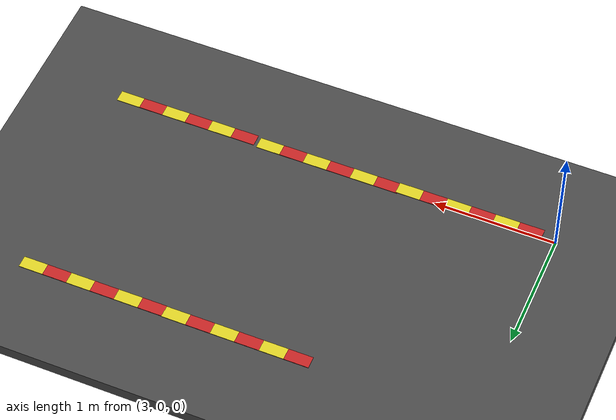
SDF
<sdf version="1.6">
 <world name="default">
  <model name="ground_plane">
   <static>1</static>
   <link name="link">
    <collision name="collision">
     <geometry><plane><normal>0 0 1</normal><size>40 40</size></plane></geometry>
     <surface><friction><ode><mu>100</mu><mu2>50</mu2></ode></friction></surface>
    </collision>
    <visual name="visual">
     <cast_shadows>0</cast_shadows>
     <geometry><plane><normal>0 0 1</normal><size>40 40</size></plane></geometry>
     <material>
      <script><uri>file://media/materials/scripts/gazebo.material</uri><name>Gazebo/Grey</name></script>
     </material>
    </visual>
    <velocity_decay><linear>0</linear><angular>0</angular></velocity_decay>
   </link>
  </model>
  <model name="asphalt_plane">
   <static>1</static>
   <link name="link">
    <collision name="collision"><geometry><box><size>40 40 0.1</size></box></geometry></collision>
    <visual name="visual">
     <cast_shadows>0</cast_shadows>
     <geometry><box><size>40 40 0.1</size></box></geometry>
     <material>
      <script>
       <uri>model://asphalt_plane/materials/scripts</uri>
       <uri>model://asphalt_plane/materials/textures</uri>
       <name>vrc/asphalt</name>
      </script>
     </material>
    </visual>
    <velocity_decay><linear>0</linear><angular>0</angular></velocity_decay>
   </link>
   <pose>0.433796 -0.497378 0 0 -0 0</pose>
  </model>
  <model name="DashLine_clone_clone_clone">
   <link name="link">
    <inertial>
     <mass>1</mass>
     <inertia>
      <ixx>0.166667</ixx>
      <ixy>0</ixy>
      <ixz>0</ixz>
      <iyy>0.166667</iyy>
      <iyz>0</iyz>
      <izz>0.166667</izz>
     </inertia>
    </inertial>
    <gravity>0</gravity>
    <visual name="ModelPreview_3::link::visual_3">
     <geometry><box><size>0.2 0.1 0.01</size></box></geometry>
     <material>
      <script><name>Gazebo/Yellow</name><uri>file://media/materials/scripts/gazebo.material</uri></script>
      <shader type="vertex"><normal_map>__default__</normal_map></shader>
      <ambient>0.988 0.914 0.31 1</ambient>
      <diffuse>0.7 0.7 0.7 1</diffuse>
      <specular>0.01 0.01 0.01 1</specular>
      <emissive>0 0 0 1</emissive>
     </material>
     <pose>0.2 0 0 0 -0 0</pose>
    </visual>
    <visual name="ModelPreview_6::link::visual_5">
     <geometry><box><size>0.2 0.1 0.01</size></box></geometry>
     <material>
      <script><name>Gazebo/Yellow</name><uri>file://media/materials/scripts/gazebo.material</uri></script>
      <shader type="vertex"><normal_map>__default__</normal_map></shader>
      <ambient>0.988 0.914 0.31 1</ambient>
      <diffuse>0.7 0.7 0.7 1</diffuse>
      <specular>0.01 0.01 0.01 1</specular>
      <emissive>0 0 0 1</emissive>
     </material>
     <pose>0.6 0 0 0 -0 0</pose>
    </visual>
    <visual name="ModelPreview_3::link::visual_4">
     <geometry><box><size>0.2 0.1 0.01</size></box></geometry>
     <material>
      <script><name>Gazebo/Red</name><uri>file://media/materials/scripts/gazebo.material</uri></script>
      <shader type="vertex"><normal_map>__default__</normal_map></shader>
      <ambient>0.937 0.161 0.161 1</ambient>
      <diffuse>0.7 0.7 0.7 1</diffuse>
      <specular>0.01 0.01 0.01 1</specular>
      <emissive>0 0 0 1</emissive>
     </material>
     <pose>0.4 0 0 0 -0 0</pose>
    </visual>
    <visual name="ModelPreview_3::link::visual_2">
     <geometry><box><size>0.2 0.1 0.01</size></box></geometry>
     <material>
      <script><name>Gazebo/Red</name><uri>file://media/materials/scripts/gazebo.material</uri></script>
      <shader type="vertex"><normal_map>__default__</normal_map></shader>
      <ambient>0.937 0.161 0.161 1</ambient>
      <diffuse>0.7 0.7 0.7 1</diffuse>
      <specular>0.01 0.01 0.01 1</specular>
      <emissive>0 0 0 1</emissive>
     </material>
    </visual>
    <visual name="visual">
     <geometry><box><size>0.2 0.1 0.01</size></box></geometry>
     <material>
      <script><name>Gazebo/Red</name><uri>file://media/materials/scripts/gazebo.material</uri></script>
      <shader type="vertex"><normal_map>__default__</normal_map></shader>
      <ambient>0.8 0 0 1</ambient>
      <diffuse>0.7 0.7 0.7 1</diffuse>
      <specular>0.01 0.01 0.01 1</specular>
      <emissive>0 0 0 1</emissive>
     </material>
     <pose>-0.4 0 0 0 -0 0</pose>
    </visual>
    <visual name="ModelPreview_3::link::visual_1">
     <geometry><box><size>0.2 0.1 0.01</size></box></geometry>
     <material>
      <script><name>Gazebo/Yellow</name><uri>file://media/materials/scripts/gazebo.material</uri></script>
      <shader type="vertex"><normal_map>__default__</normal_map></shader>
      <ambient>0.988 0.914 0.31 1</ambient>
      <diffuse>0.7 0.7 0.7 1</diffuse>
      <specular>0.01 0.01 0.01 1</specular>
      <emissive>0 0 0 1</emissive>
     </material>
     <pose>-0.2 0 0 0 -0 0</pose>
    </visual>
   </link>
   <static>0</static>
   <pose>3.60612 0.00353 0.05 0 -0 0</pose>
  </model>
  <model name="DashLine_clone_clone_clone_0">
   <link name="link">
    <inertial>
     <mass>1</mass>
     <inertia>
      <ixx>0.166667</ixx>
      <ixy>0</ixy>
      <ixz>0</ixz>
      <iyy>0.166667</iyy>
      <iyz>0</iyz>
      <izz>0.166667</izz>
     </inertia>
    </inertial>
    <gravity>0</gravity>
    <visual name="ModelPreview_3::link::visual_3">
     <geometry><box><size>0.2 0.1 0.01</size></box></geometry>
     <material>
      <script><name>Gazebo/Yellow</name><uri>file://media/materials/scripts/gazebo.material</uri></script>
      <shader type="vertex"><normal_map>__default__</normal_map></shader>
      <ambient>0.988 0.914 0.31 1</ambient>
      <diffuse>0.7 0.7 0.7 1</diffuse>
      <specular>0.01 0.01 0.01 1</specular>
      <emissive>0 0 0 1</emissive>
     </material>
     <pose>0.2 0 0 0 -0 0</pose>
    </visual>
    <visual name="ModelPreview_6::link::visual_5">
     <geometry><box><size>0.2 0.1 0.01</size></box></geometry>
     <material>
      <script><name>Gazebo/Yellow</name><uri>file://media/materials/scripts/gazebo.material</uri></script>
      <shader type="vertex"><normal_map>__default__</normal_map></shader>
      <ambient>0.988 0.914 0.31 1</ambient>
      <diffuse>0.7 0.7 0.7 1</diffuse>
      <specular>0.01 0.01 0.01 1</specular>
      <emissive>0 0 0 1</emissive>
     </material>
     <pose>0.6 0 0 0 -0 0</pose>
    </visual>
    <visual name="ModelPreview_3::link::visual_4">
     <geometry><box><size>0.2 0.1 0.01</size></box></geometry>
     <material>
      <script><name>Gazebo/Red</name><uri>file://media/materials/scripts/gazebo.material</uri></script>
      <shader type="vertex"><normal_map>__default__</normal_map></shader>
      <ambient>0.937 0.161 0.161 1</ambient>
      <diffuse>0.7 0.7 0.7 1</diffuse>
      <specular>0.01 0.01 0.01 1</specular>
      <emissive>0 0 0 1</emissive>
     </material>
     <pose>0.4 0 0 0 -0 0</pose>
    </visual>
    <visual name="ModelPreview_3::link::visual_2">
     <geometry><box><size>0.2 0.1 0.01</size></box></geometry>
     <material>
      <script><name>Gazebo/Red</name><uri>file://media/materials/scripts/gazebo.material</uri></script>
      <shader type="vertex"><normal_map>__default__</normal_map></shader>
      <ambient>0.937 0.161 0.161 1</ambient>
      <diffuse>0.7 0.7 0.7 1</diffuse>
      <specular>0.01 0.01 0.01 1</specular>
      <emissive>0 0 0 1</emissive>
     </material>
    </visual>
    <visual name="visual">
     <geometry><box><size>0.2 0.1 0.01</size></box></geometry>
     <material>
      <script><name>Gazebo/Red</name><uri>file://media/materials/scripts/gazebo.material</uri></script>
      <shader type="vertex"><normal_map>__default__</normal_map></shader>
      <ambient>0.8 0 0 1</ambient>
      <diffuse>0.7 0.7 0.7 1</diffuse>
      <specular>0.01 0.01 0.01 1</specular>
      <emissive>0 0 0 1</emissive>
     </material>
     <pose>-0.4 0 0 0 -0 0</pose>
    </visual>
    <visual name="ModelPreview_3::link::visual_1">
     <geometry><box><size>0.2 0.1 0.01</size></box></geometry>
     <material>
      <script><name>Gazebo/Yellow</name><uri>file://media/materials/scripts/gazebo.material</uri></script>
      <shader type="vertex"><normal_map>__default__</normal_map></shader>
      <ambient>0.988 0.914 0.31 1</ambient>
      <diffuse>0.7 0.7 0.7 1</diffuse>
      <specular>0.01 0.01 0.01 1</specular>
      <emissive>0 0 0 1</emissive>
     </material>
     <pose>-0.2 0 0 0 -0 0</pose>
    </visual>
   </link>
   <static>0</static>
   <pose>4.79034 0.009955 0.05 0 -0 0</pose>
  </model>
  <model name="DashLine_clone_clone_clone_1">
   <link name="link">
    <inertial>
     <mass>1</mass>
     <inertia>
      <ixx>0.166667</ixx>
      <ixy>0</ixy>
      <ixz>0</ixz>
      <iyy>0.166667</iyy>
      <iyz>0</iyz>
      <izz>0.166667</izz>
     </inertia>
    </inertial>
    <gravity>0</gravity>
    <visual name="ModelPreview_3::link::visual_3">
     <geometry><box><size>0.2 0.1 0.01</size></box></geometry>
     <material>
      <script><name>Gazebo/Yellow</name><uri>file://media/materials/scripts/gazebo.material</uri></script>
      <shader type="vertex"><normal_map>__default__</normal_map></shader>
      <ambient>0.988 0.914 0.31 1</ambient>
      <diffuse>0.7 0.7 0.7 1</diffuse>
      <specular>0.01 0.01 0.01 1</specular>
      <emissive>0 0 0 1</emissive>
     </material>
     <pose>0.2 0 0 0 -0 0</pose>
    </visual>
    <visual name="ModelPreview_6::link::visual_5">
     <geometry><box><size>0.2 0.1 0.01</size></box></geometry>
     <material>
      <script><name>Gazebo/Yellow</name><uri>file://media/materials/scripts/gazebo.material</uri></script>
      <shader type="vertex"><normal_map>__default__</normal_map></shader>
      <ambient>0.988 0.914 0.31 1</ambient>
      <diffuse>0.7 0.7 0.7 1</diffuse>
      <specular>0.01 0.01 0.01 1</specular>
      <emissive>0 0 0 1</emissive>
     </material>
     <pose>0.6 0 0 0 -0 0</pose>
    </visual>
    <visual name="ModelPreview_3::link::visual_4">
     <geometry><box><size>0.2 0.1 0.01</size></box></geometry>
     <material>
      <script><name>Gazebo/Red</name><uri>file://media/materials/scripts/gazebo.material</uri></script>
      <shader type="vertex"><normal_map>__default__</normal_map></shader>
      <ambient>0.937 0.161 0.161 1</ambient>
      <diffuse>0.7 0.7 0.7 1</diffuse>
      <specular>0.01 0.01 0.01 1</specular>
      <emissive>0 0 0 1</emissive>
     </material>
     <pose>0.4 0 0 0 -0 0</pose>
    </visual>
    <visual name="ModelPreview_3::link::visual_2">
     <geometry><box><size>0.2 0.1 0.01</size></box></geometry>
     <material>
      <script><name>Gazebo/Red</name><uri>file://media/materials/scripts/gazebo.material</uri></script>
      <shader type="vertex"><normal_map>__default__</normal_map></shader>
      <ambient>0.937 0.161 0.161 1</ambient>
      <diffuse>0.7 0.7 0.7 1</diffuse>
      <specular>0.01 0.01 0.01 1</specular>
      <emissive>0 0 0 1</emissive>
     </material>
    </visual>
    <visual name="visual">
     <geometry><box><size>0.2 0.1 0.01</size></box></geometry>
     <material>
      <script><name>Gazebo/Red</name><uri>file://media/materials/scripts/gazebo.material</uri></script>
      <shader type="vertex"><normal_map>__default__</normal_map></shader>
      <ambient>0.8 0 0 1</ambient>
      <diffuse>0.7 0.7 0.7 1</diffuse>
      <specular>0.01 0.01 0.01 1</specular>
      <emissive>0 0 0 1</emissive>
     </material>
     <pose>-0.4 0 0 0 -0 0</pose>
    </visual>
    <visual name="ModelPreview_3::link::visual_1">
     <geometry><box><size>0.2 0.1 0.01</size></box></geometry>
     <material>
      <script><name>Gazebo/Yellow</name><uri>file://media/materials/scripts/gazebo.material</uri></script>
      <shader type="vertex"><normal_map>__default__</normal_map></shader>
      <ambient>0.988 0.914 0.31 1</ambient>
      <diffuse>0.7 0.7 0.7 1</diffuse>
      <specular>0.01 0.01 0.01 1</specular>
      <emissive>0 0 0 1</emissive>
     </material>
     <pose>-0.2 0 0 0 -0 0</pose>
    </visual>
   </link>
   <static>0</static>
   <pose>6.01721 -0.001869 0.05 0 -0 0</pose>
  </model>
  <model name="DashLine_clone_clone_clone_6">
   <link name="link">
    <inertial>
     <mass>1</mass>
     <inertia>
      <ixx>0.166667</ixx>
      <ixy>0</ixy>
      <ixz>0</ixz>
      <iyy>0.166667</iyy>
      <iyz>0</iyz>
      <izz>0.166667</izz>
     </inertia>
    </inertial>
    <gravity>0</gravity>
    <visual name="ModelPreview_3::link::visual_3">
     <geometry><box><size>0.2 0.1 0.01</size></box></geometry>
     <material>
      <script><name>Gazebo/Yellow</name><uri>file://media/materials/scripts/gazebo.material</uri></script>
      <shader type="vertex"><normal_map>__default__</normal_map></shader>
      <ambient>0.988 0.914 0.31 1</ambient>
      <diffuse>0.7 0.7 0.7 1</diffuse>
      <specular>0.01 0.01 0.01 1</specular>
      <emissive>0 0 0 1</emissive>
     </material>
     <pose>0.2 0 0 0 -0 0</pose>
    </visual>
    <visual name="ModelPreview_6::link::visual_5">
     <geometry><box><size>0.2 0.1 0.01</size></box></geometry>
     <material>
      <script><name>Gazebo/Yellow</name><uri>file://media/materials/scripts/gazebo.material</uri></script>
      <shader type="vertex"><normal_map>__default__</normal_map></shader>
      <ambient>0.988 0.914 0.31 1</ambient>
      <diffuse>0.7 0.7 0.7 1</diffuse>
      <specular>0.01 0.01 0.01 1</specular>
      <emissive>0 0 0 1</emissive>
     </material>
     <pose>0.6 0 0 0 -0 0</pose>
    </visual>
    <visual name="ModelPreview_3::link::visual_4">
     <geometry><box><size>0.2 0.1 0.01</size></box></geometry>
     <material>
      <script><name>Gazebo/Red</name><uri>file://media/materials/scripts/gazebo.material</uri></script>
      <shader type="vertex"><normal_map>__default__</normal_map></shader>
      <ambient>0.937 0.161 0.161 1</ambient>
      <diffuse>0.7 0.7 0.7 1</diffuse>
      <specular>0.01 0.01 0.01 1</specular>
      <emissive>0 0 0 1</emissive>
     </material>
     <pose>0.4 0 0 0 -0 0</pose>
    </visual>
    <visual name="ModelPreview_3::link::visual_2">
     <geometry><box><size>0.2 0.1 0.01</size></box></geometry>
     <material>
      <script><name>Gazebo/Red</name><uri>file://media/materials/scripts/gazebo.material</uri></script>
      <shader type="vertex"><normal_map>__default__</normal_map></shader>
      <ambient>0.937 0.161 0.161 1</ambient>
      <diffuse>0.7 0.7 0.7 1</diffuse>
      <specular>0.01 0.01 0.01 1</specular>
      <emissive>0 0 0 1</emissive>
     </material>
    </visual>
    <visual name="visual">
     <geometry><box><size>0.2 0.1 0.01</size></box></geometry>
     <material>
      <script><name>Gazebo/Red</name><uri>file://media/materials/scripts/gazebo.material</uri></script>
      <shader type="vertex"><normal_map>__default__</normal_map></shader>
      <ambient>0.8 0 0 1</ambient>
      <diffuse>0.7 0.7 0.7 1</diffuse>
      <specular>0.01 0.01 0.01 1</specular>
      <emissive>0 0 0 1</emissive>
     </material>
     <pose>-0.4 0 0 0 -0 0</pose>
    </visual>
    <visual name="ModelPreview_3::link::visual_1">
     <geometry><box><size>0.2 0.1 0.01</size></box></geometry>
     <material>
      <script><name>Gazebo/Yellow</name><uri>file://media/materials/scripts/gazebo.material</uri></script>
      <shader type="vertex"><normal_map>__default__</normal_map></shader>
      <ambient>0.988 0.914 0.31 1</ambient>
      <diffuse>0.7 0.7 0.7 1</diffuse>
      <specular>0.01 0.01 0.01 1</specular>
      <emissive>0 0 0 1</emissive>
     </material>
     <pose>-0.2 0 0 0 -0 0</pose>
    </visual>
   </link>
   <static>0</static>
   <pose>5.9877 1.80097 0.05 0 -0 0</pose>
  </model>
  <model name="DashLine_clone_clone_clone_7">
   <link name="link">
    <inertial>
     <mass>1</mass>
     <inertia>
      <ixx>0.166667</ixx>
      <ixy>0</ixy>
      <ixz>0</ixz>
      <iyy>0.166667</iyy>
      <iyz>0</iyz>
      <izz>0.166667</izz>
     </inertia>
    </inertial>
    <gravity>0</gravity>
    <visual name="ModelPreview_3::link::visual_3">
     <geometry><box><size>0.2 0.1 0.01</size></box></geometry>
     <material>
      <script><name>Gazebo/Yellow</name><uri>file://media/materials/scripts/gazebo.material</uri></script>
      <shader type="vertex"><normal_map>__default__</normal_map></shader>
      <ambient>0.988 0.914 0.31 1</ambient>
      <diffuse>0.7 0.7 0.7 1</diffuse>
      <specular>0.01 0.01 0.01 1</specular>
      <emissive>0 0 0 1</emissive>
     </material>
     <pose>0.2 0 0 0 -0 0</pose>
    </visual>
    <visual name="ModelPreview_6::link::visual_5">
     <geometry><box><size>0.2 0.1 0.01</size></box></geometry>
     <material>
      <script><name>Gazebo/Yellow</name><uri>file://media/materials/scripts/gazebo.material</uri></script>
      <shader type="vertex"><normal_map>__default__</normal_map></shader>
      <ambient>0.988 0.914 0.31 1</ambient>
      <diffuse>0.7 0.7 0.7 1</diffuse>
      <specular>0.01 0.01 0.01 1</specular>
      <emissive>0 0 0 1</emissive>
     </material>
     <pose>0.6 0 0 0 -0 0</pose>
    </visual>
    <visual name="ModelPreview_3::link::visual_4">
     <geometry><box><size>0.2 0.1 0.01</size></box></geometry>
     <material>
      <script><name>Gazebo/Red</name><uri>file://media/materials/scripts/gazebo.material</uri></script>
      <shader type="vertex"><normal_map>__default__</normal_map></shader>
      <ambient>0.937 0.161 0.161 1</ambient>
      <diffuse>0.7 0.7 0.7 1</diffuse>
      <specular>0.01 0.01 0.01 1</specular>
      <emissive>0 0 0 1</emissive>
     </material>
     <pose>0.4 0 0 0 -0 0</pose>
    </visual>
    <visual name="ModelPreview_3::link::visual_2">
     <geometry><box><size>0.2 0.1 0.01</size></box></geometry>
     <material>
      <script><name>Gazebo/Red</name><uri>file://media/materials/scripts/gazebo.material</uri></script>
      <shader type="vertex"><normal_map>__default__</normal_map></shader>
      <ambient>0.937 0.161 0.161 1</ambient>
      <diffuse>0.7 0.7 0.7 1</diffuse>
      <specular>0.01 0.01 0.01 1</specular>
      <emissive>0 0 0 1</emissive>
     </material>
    </visual>
    <visual name="visual">
     <geometry><box><size>0.2 0.1 0.01</size></box></geometry>
     <material>
      <script><name>Gazebo/Red</name><uri>file://media/materials/scripts/gazebo.material</uri></script>
      <shader type="vertex"><normal_map>__default__</normal_map></shader>
      <ambient>0.8 0 0 1</ambient>
      <diffuse>0.7 0.7 0.7 1</diffuse>
      <specular>0.01 0.01 0.01 1</specular>
      <emissive>0 0 0 1</emissive>
     </material>
     <pose>-0.4 0 0 0 -0 0</pose>
    </visual>
    <visual name="ModelPreview_3::link::visual_1">
     <geometry><box><size>0.2 0.1 0.01</size></box></geometry>
     <material>
      <script><name>Gazebo/Yellow</name><uri>file://media/materials/scripts/gazebo.material</uri></script>
      <shader type="vertex"><normal_map>__default__</normal_map></shader>
      <ambient>0.988 0.914 0.31 1</ambient>
      <diffuse>0.7 0.7 0.7 1</diffuse>
      <specular>0.01 0.01 0.01 1</specular>
      <emissive>0 0 0 1</emissive>
     </material>
     <pose>-0.2 0 0 0 -0 0</pose>
    </visual>
   </link>
   <static>0</static>
   <pose>4.78941 1.80409 0.05 0 -0 0</pose>
  </model>
 </world>
</sdf>
